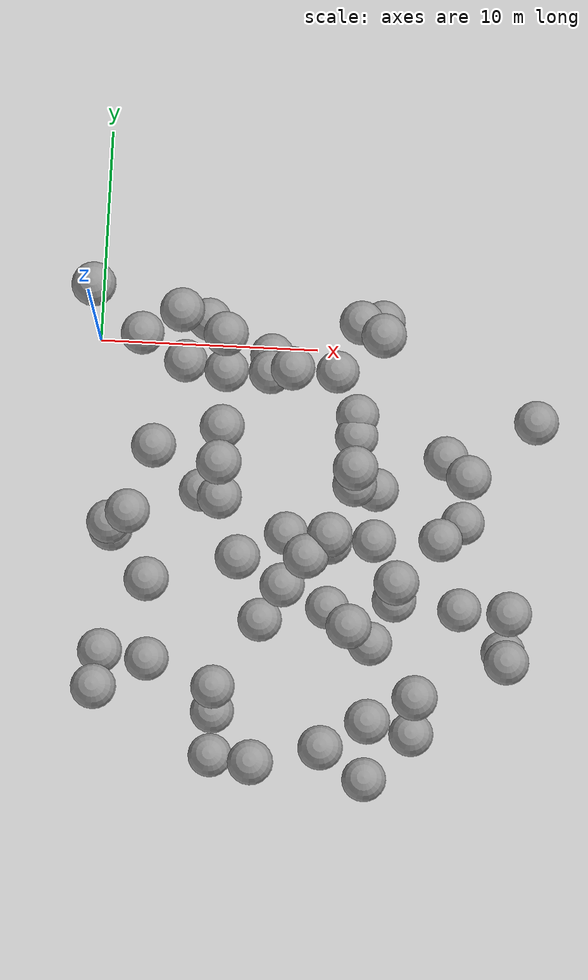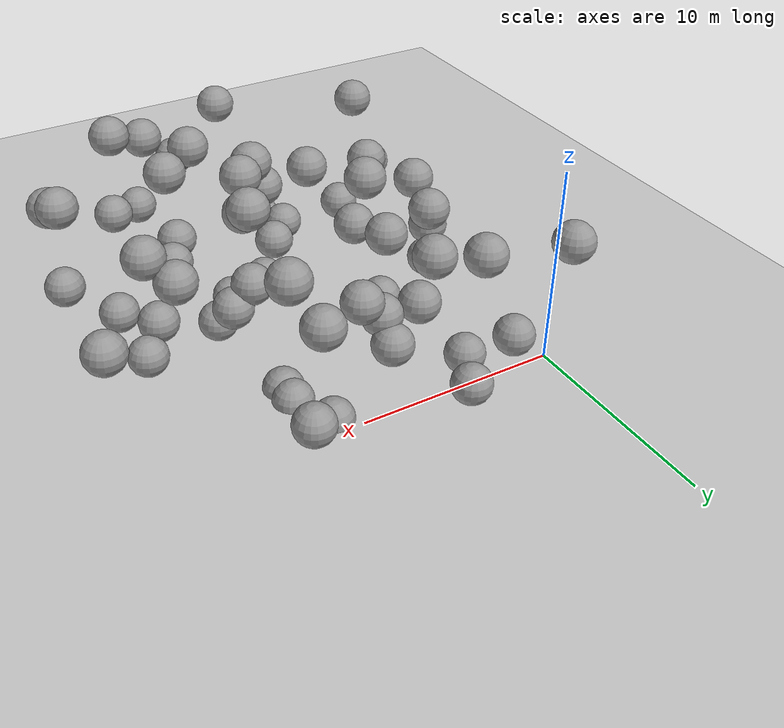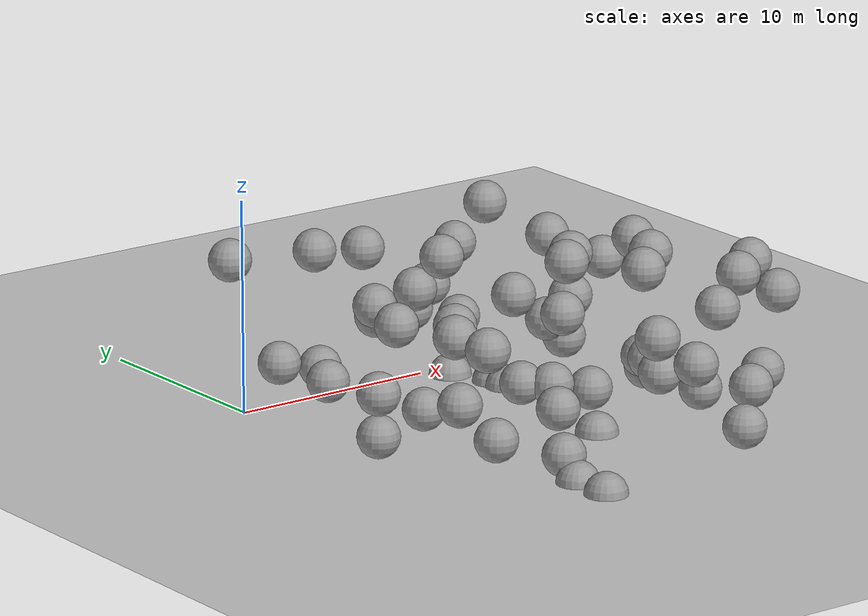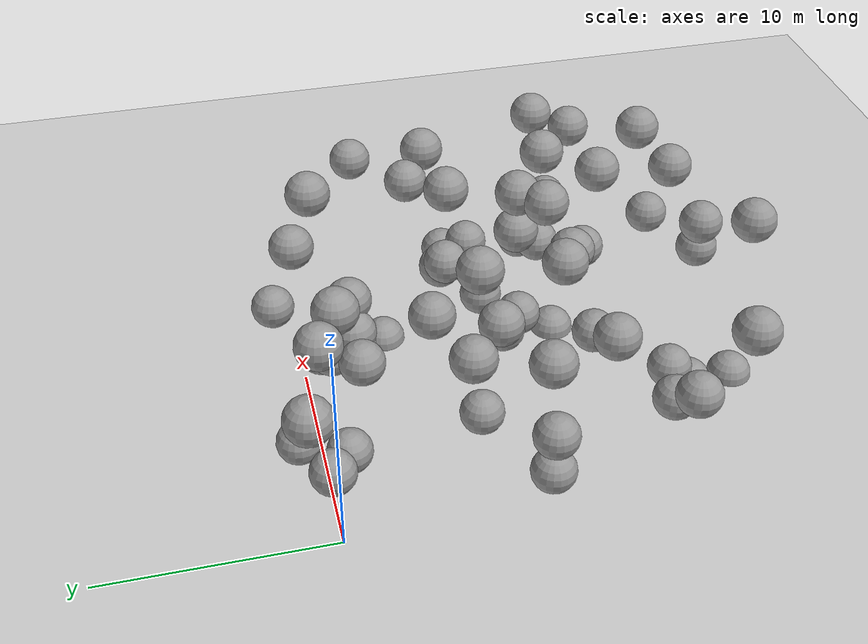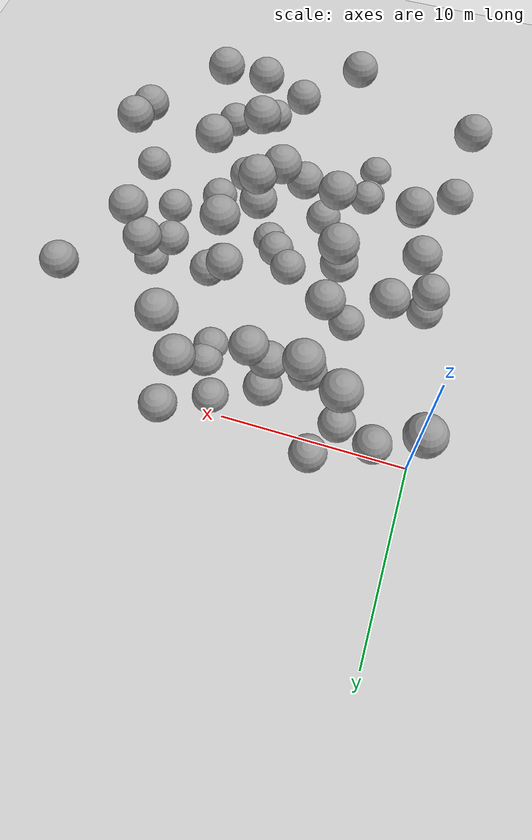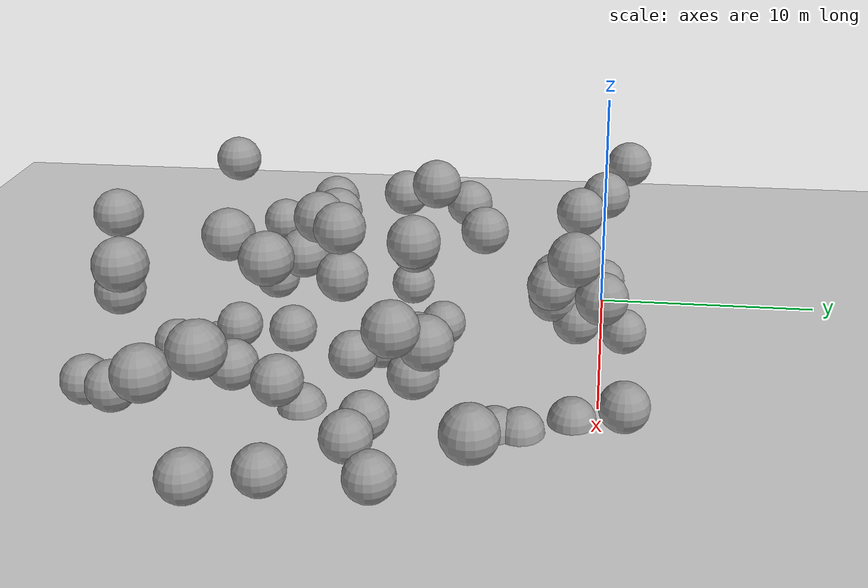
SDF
<sdf version="1.7">
 <world name="default">
  <model name="ground_plane">
   <static>1</static>
   <link name="link">
    <collision name="collision">
     <geometry><plane><normal>0 0 1</normal><size>100 100</size></plane></geometry>
     <surface>
      <contact><collide_bitmask>65535</collide_bitmask></contact>
      <friction><ode><mu>100</mu><mu2>50</mu2></ode></friction>
     </surface>
    </collision>
    <visual name="visual">
     <cast_shadows>0</cast_shadows>
     <geometry><plane><normal>0 0 1</normal><size>100 100</size></plane></geometry>
     <material>
      <script><uri>file://media/materials/scripts/gazebo.material</uri><name>Gazebo/Grey</name></script>
     </material>
    </visual>
   </link>
  </model>
  <model name="sphere_2">
   <static>1</static>
   <pose>16 -6 6 0 0 0</pose>
   <link name="link">
    <inertial>
     <mass>418.87902047863906</mass>
     <inertia>
      <ixx>167.55160819145564</ixx>
      <iyy>167.55160819145564</iyy>
      <izz>167.55160819145564</izz>
      <ixy>0</ixy>
      <ixz>0</ixz>
      <iyz>0</iyz>
     </inertia>
    </inertial>
    <collision name="collision"><geometry><sphere><radius>1.0</radius></sphere></geometry></collision>
    <visual name="visual">
     <geometry><sphere><radius>1.0</radius></sphere></geometry>
     <material>
      <script><uri>file://media/materials/scripts/gazebo.material</uri><name>Gazebo/Grey</name></script>
     </material>
    </visual>
   </link>
  </model>
  <model name="sphere_11">
   <static>1</static>
   <pose>13 -7 3 0 0 0</pose>
   <link name="link">
    <inertial>
     <mass>418.87902047863906</mass>
     <inertia>
      <ixx>167.55160819145564</ixx>
      <iyy>167.55160819145564</iyy>
      <izz>167.55160819145564</izz>
      <ixy>0</ixy>
      <ixz>0</ixz>
      <iyz>0</iyz>
     </inertia>
    </inertial>
    <collision name="collision"><geometry><sphere><radius>1.0</radius></sphere></geometry></collision>
    <visual name="visual">
     <geometry><sphere><radius>1.0</radius></sphere></geometry>
     <material>
      <script><uri>file://media/materials/scripts/gazebo.material</uri><name>Gazebo/Grey</name></script>
     </material>
    </visual>
   </link>
  </model>
  <model name="sphere_12">
   <static>1</static>
   <pose>13 -18 7 0 0 0</pose>
   <link name="link">
    <inertial>
     <mass>418.87902047863906</mass>
     <inertia>
      <ixx>167.55160819145564</ixx>
      <iyy>167.55160819145564</iyy>
      <izz>167.55160819145564</izz>
      <ixy>0</ixy>
      <ixz>0</ixz>
      <iyz>0</iyz>
     </inertia>
    </inertial>
    <collision name="collision"><geometry><sphere><radius>1.0</radius></sphere></geometry></collision>
    <visual name="visual">
     <geometry><sphere><radius>1.0</radius></sphere></geometry>
     <material>
      <script><uri>file://media/materials/scripts/gazebo.material</uri><name>Gazebo/Grey</name></script>
     </material>
    </visual>
   </link>
  </model>
  <model name="sphere_13">
   <static>1</static>
   <pose>1 -9 1 0 0 0</pose>
   <link name="link">
    <inertial>
     <mass>418.87902047863906</mass>
     <inertia>
      <ixx>167.55160819145564</ixx>
      <iyy>167.55160819145564</iyy>
      <izz>167.55160819145564</izz>
      <ixy>0</ixy>
      <ixz>0</ixz>
      <iyz>0</iyz>
     </inertia>
    </inertial>
    <collision name="collision"><geometry><sphere><radius>1.0</radius></sphere></geometry></collision>
    <visual name="visual">
     <geometry><sphere><radius>1.0</radius></sphere></geometry>
     <material>
      <script><uri>file://media/materials/scripts/gazebo.material</uri><name>Gazebo/Grey</name></script>
     </material>
    </visual>
   </link>
  </model>
  <model name="sphere_18">
   <static>1</static>
   <pose>8 -13 2 0 0 0</pose>
   <link name="link">
    <inertial>
     <mass>418.87902047863906</mass>
     <inertia>
      <ixx>167.55160819145564</ixx>
      <iyy>167.55160819145564</iyy>
      <izz>167.55160819145564</izz>
      <ixy>0</ixy>
      <ixz>0</ixz>
      <iyz>0</iyz>
     </inertia>
    </inertial>
    <collision name="collision"><geometry><sphere><radius>1.0</radius></sphere></geometry></collision>
    <visual name="visual">
     <geometry><sphere><radius>1.0</radius></sphere></geometry>
     <material>
      <script><uri>file://media/materials/scripts/gazebo.material</uri><name>Gazebo/Grey</name></script>
     </material>
    </visual>
   </link>
  </model>
  <model name="sphere_22">
   <static>1</static>
   <pose>5 1 1 0 0 0</pose>
   <link name="link">
    <inertial>
     <mass>418.87902047863906</mass>
     <inertia>
      <ixx>167.55160819145564</ixx>
      <iyy>167.55160819145564</iyy>
      <izz>167.55160819145564</izz>
      <ixy>0</ixy>
      <ixz>0</ixz>
      <iyz>0</iyz>
     </inertia>
    </inertial>
    <collision name="collision"><geometry><sphere><radius>1.0</radius></sphere></geometry></collision>
    <visual name="visual">
     <geometry><sphere><radius>1.0</radius></sphere></geometry>
     <material>
      <script><uri>file://media/materials/scripts/gazebo.material</uri><name>Gazebo/Grey</name></script>
     </material>
    </visual>
   </link>
  </model>
  <model name="sphere_25">
   <static>1</static>
   <pose>1 -9 3 0 0 0</pose>
   <link name="link">
    <inertial>
     <mass>418.87902047863906</mass>
     <inertia>
      <ixx>167.55160819145564</ixx>
      <iyy>167.55160819145564</iyy>
      <izz>167.55160819145564</izz>
      <ixy>0</ixy>
      <ixz>0</ixz>
      <iyz>0</iyz>
     </inertia>
    </inertial>
    <collision name="collision"><geometry><sphere><radius>1.0</radius></sphere></geometry></collision>
    <visual name="visual">
     <geometry><sphere><radius>1.0</radius></sphere></geometry>
     <material>
      <script><uri>file://media/materials/scripts/gazebo.material</uri><name>Gazebo/Grey</name></script>
     </material>
    </visual>
   </link>
  </model>
  <model name="sphere_31">
   <static>1</static>
   <pose>14 -12 3 0 0 0</pose>
   <link name="link">
    <inertial>
     <mass>418.87902047863906</mass>
     <inertia>
      <ixx>167.55160819145564</ixx>
      <iyy>167.55160819145564</iyy>
      <izz>167.55160819145564</izz>
      <ixy>0</ixy>
      <ixz>0</ixz>
      <iyz>0</iyz>
     </inertia>
    </inertial>
    <collision name="collision"><geometry><sphere><radius>1.0</radius></sphere></geometry></collision>
    <visual name="visual">
     <geometry><sphere><radius>1.0</radius></sphere></geometry>
     <material>
      <script><uri>file://media/materials/scripts/gazebo.material</uri><name>Gazebo/Grey</name></script>
     </material>
    </visual>
   </link>
  </model>
  <model name="sphere_34">
   <static>1</static>
   <pose>1 -17 7 0 0 0</pose>
   <link name="link">
    <inertial>
     <mass>418.87902047863906</mass>
     <inertia>
      <ixx>167.55160819145564</ixx>
      <iyy>167.55160819145564</iyy>
      <izz>167.55160819145564</izz>
      <ixy>0</ixy>
      <ixz>0</ixz>
      <iyz>0</iyz>
     </inertia>
    </inertial>
    <collision name="collision"><geometry><sphere><radius>1.0</radius></sphere></geometry></collision>
    <visual name="visual">
     <geometry><sphere><radius>1.0</radius></sphere></geometry>
     <material>
      <script><uri>file://media/materials/scripts/gazebo.material</uri><name>Gazebo/Grey</name></script>
     </material>
    </visual>
   </link>
  </model>
  <model name="sphere_39">
   <static>1</static>
   <pose>3 -15 2 0 0 0</pose>
   <link name="link">
    <inertial>
     <mass>418.87902047863906</mass>
     <inertia>
      <ixx>167.55160819145564</ixx>
      <iyy>167.55160819145564</iyy>
      <izz>167.55160819145564</izz>
      <ixy>0</ixy>
      <ixz>0</ixz>
      <iyz>0</iyz>
     </inertia>
    </inertial>
    <collision name="collision"><geometry><sphere><radius>1.0</radius></sphere></geometry></collision>
    <visual name="visual">
     <geometry><sphere><radius>1.0</radius></sphere></geometry>
     <material>
      <script><uri>file://media/materials/scripts/gazebo.material</uri><name>Gazebo/Grey</name></script>
     </material>
    </visual>
   </link>
  </model>
  <model name="sphere_42">
   <static>1</static>
   <pose>13 -1 8 0 0 0</pose>
   <link name="link">
    <inertial>
     <mass>418.87902047863906</mass>
     <inertia>
      <ixx>167.55160819145564</ixx>
      <iyy>167.55160819145564</iyy>
      <izz>167.55160819145564</izz>
      <ixy>0</ixy>
      <ixz>0</ixz>
      <iyz>0</iyz>
     </inertia>
    </inertial>
    <collision name="collision"><geometry><sphere><radius>1.0</radius></sphere></geometry></collision>
    <visual name="visual">
     <geometry><sphere><radius>1.0</radius></sphere></geometry>
     <material>
      <script><uri>file://media/materials/scripts/gazebo.material</uri><name>Gazebo/Grey</name></script>
     </material>
    </visual>
   </link>
  </model>
  <model name="sphere_43">
   <static>1</static>
   <pose>9 -2 5 0 0 0</pose>
   <link name="link">
    <inertial>
     <mass>418.87902047863906</mass>
     <inertia>
      <ixx>167.55160819145564</ixx>
      <iyy>167.55160819145564</iyy>
      <izz>167.55160819145564</izz>
      <ixy>0</ixy>
      <ixz>0</ixz>
      <iyz>0</iyz>
     </inertia>
    </inertial>
    <collision name="collision"><geometry><sphere><radius>1.0</radius></sphere></geometry></collision>
    <visual name="visual">
     <geometry><sphere><radius>1.0</radius></sphere></geometry>
     <material>
      <script><uri>file://media/materials/scripts/gazebo.material</uri><name>Gazebo/Grey</name></script>
     </material>
    </visual>
   </link>
  </model>
  <model name="sphere_45">
   <static>1</static>
   <pose>8 -2 4 0 0 0</pose>
   <link name="link">
    <inertial>
     <mass>418.87902047863906</mass>
     <inertia>
      <ixx>167.55160819145564</ixx>
      <iyy>167.55160819145564</iyy>
      <izz>167.55160819145564</izz>
      <ixy>0</ixy>
      <ixz>0</ixz>
      <iyz>0</iyz>
     </inertia>
    </inertial>
    <collision name="collision"><geometry><sphere><radius>1.0</radius></sphere></geometry></collision>
    <visual name="visual">
     <geometry><sphere><radius>1.0</radius></sphere></geometry>
     <material>
      <script><uri>file://media/materials/scripts/gazebo.material</uri><name>Gazebo/Grey</name></script>
     </material>
    </visual>
   </link>
  </model>
  <model name="sphere_47">
   <static>1</static>
   <pose>12 -4 0 0 0 0</pose>
   <link name="link">
    <inertial>
     <mass>418.87902047863906</mass>
     <inertia>
      <ixx>167.55160819145564</ixx>
      <iyy>167.55160819145564</iyy>
      <izz>167.55160819145564</izz>
      <ixy>0</ixy>
      <ixz>0</ixz>
      <iyz>0</iyz>
     </inertia>
    </inertial>
    <collision name="collision"><geometry><sphere><radius>1.0</radius></sphere></geometry></collision>
    <visual name="visual">
     <geometry><sphere><radius>1.0</radius></sphere></geometry>
     <material>
      <script><uri>file://media/materials/scripts/gazebo.material</uri><name>Gazebo/Grey</name></script>
     </material>
    </visual>
   </link>
  </model>
  <model name="sphere_48">
   <static>1</static>
   <pose>11 -12 0 0 0 0</pose>
   <link name="link">
    <inertial>
     <mass>418.87902047863906</mass>
     <inertia>
      <ixx>167.55160819145564</ixx>
      <iyy>167.55160819145564</iyy>
      <izz>167.55160819145564</izz>
      <ixy>0</ixy>
      <ixz>0</ixz>
      <iyz>0</iyz>
     </inertia>
    </inertial>
    <collision name="collision"><geometry><sphere><radius>1.0</radius></sphere></geometry></collision>
    <visual name="visual">
     <geometry><sphere><radius>1.0</radius></sphere></geometry>
     <material>
      <script><uri>file://media/materials/scripts/gazebo.material</uri><name>Gazebo/Grey</name></script>
     </material>
    </visual>
   </link>
  </model>
  <model name="sphere_49">
   <static>1</static>
   <pose>16 -9 2 0 0 0</pose>
   <link name="link">
    <inertial>
     <mass>418.87902047863906</mass>
     <inertia>
      <ixx>167.55160819145564</ixx>
      <iyy>167.55160819145564</iyy>
      <izz>167.55160819145564</izz>
      <ixy>0</ixy>
      <ixz>0</ixz>
      <iyz>0</iyz>
     </inertia>
    </inertial>
    <collision name="collision"><geometry><sphere><radius>1.0</radius></sphere></geometry></collision>
    <visual name="visual">
     <geometry><sphere><radius>1.0</radius></sphere></geometry>
     <material>
      <script><uri>file://media/materials/scripts/gazebo.material</uri><name>Gazebo/Grey</name></script>
     </material>
    </visual>
   </link>
  </model>
  <model name="sphere_50">
   <static>1</static>
   <pose>9 -12 6 0 0 0</pose>
   <link name="link">
    <inertial>
     <mass>418.87902047863906</mass>
     <inertia>
      <ixx>167.55160819145564</ixx>
      <iyy>167.55160819145564</iyy>
      <izz>167.55160819145564</izz>
      <ixy>0</ixy>
      <ixz>0</ixz>
      <iyz>0</iyz>
     </inertia>
    </inertial>
    <collision name="collision"><geometry><sphere><radius>1.0</radius></sphere></geometry></collision>
    <visual name="visual">
     <geometry><sphere><radius>1.0</radius></sphere></geometry>
     <material>
      <script><uri>file://media/materials/scripts/gazebo.material</uri><name>Gazebo/Grey</name></script>
     </material>
    </visual>
   </link>
  </model>
  <model name="sphere_53">
   <static>1</static>
   <pose>19 -14 2 0 0 0</pose>
   <link name="link">
    <inertial>
     <mass>418.87902047863906</mass>
     <inertia>
      <ixx>167.55160819145564</ixx>
      <iyy>167.55160819145564</iyy>
      <izz>167.55160819145564</izz>
      <ixy>0</ixy>
      <ixz>0</ixz>
      <iyz>0</iyz>
     </inertia>
    </inertial>
    <collision name="collision"><geometry><sphere><radius>1.0</radius></sphere></geometry></collision>
    <visual name="visual">
     <geometry><sphere><radius>1.0</radius></sphere></geometry>
     <material>
      <script><uri>file://media/materials/scripts/gazebo.material</uri><name>Gazebo/Grey</name></script>
     </material>
    </visual>
   </link>
  </model>
  <model name="sphere_55">
   <static>1</static>
   <pose>10 -11 8 0 0 0</pose>
   <link name="link">
    <inertial>
     <mass>418.87902047863906</mass>
     <inertia>
      <ixx>167.55160819145564</ixx>
      <iyy>167.55160819145564</iyy>
      <izz>167.55160819145564</izz>
      <ixy>0</ixy>
      <ixz>0</ixz>
      <iyz>0</iyz>
     </inertia>
    </inertial>
    <collision name="collision"><geometry><sphere><radius>1.0</radius></sphere></geometry></collision>
    <visual name="visual">
     <geometry><sphere><radius>1.0</radius></sphere></geometry>
     <material>
      <script><uri>file://media/materials/scripts/gazebo.material</uri><name>Gazebo/Grey</name></script>
     </material>
    </visual>
   </link>
  </model>
  <model name="sphere_65">
   <static>1</static>
   <pose>6 -8 5 0 0 0</pose>
   <link name="link">
    <inertial>
     <mass>418.87902047863906</mass>
     <inertia>
      <ixx>167.55160819145564</ixx>
      <iyy>167.55160819145564</iyy>
      <izz>167.55160819145564</izz>
      <ixy>0</ixy>
      <ixz>0</ixz>
      <iyz>0</iyz>
     </inertia>
    </inertial>
    <collision name="collision"><geometry><sphere><radius>1.0</radius></sphere></geometry></collision>
    <visual name="visual">
     <geometry><sphere><radius>1.0</radius></sphere></geometry>
     <material>
      <script><uri>file://media/materials/scripts/gazebo.material</uri><name>Gazebo/Grey</name></script>
     </material>
    </visual>
   </link>
  </model>
  <model name="sphere_70">
   <static>1</static>
   <pose>8 -20 7 0 0 0</pose>
   <link name="link">
    <inertial>
     <mass>418.87902047863906</mass>
     <inertia>
      <ixx>167.55160819145564</ixx>
      <iyy>167.55160819145564</iyy>
      <izz>167.55160819145564</izz>
      <ixy>0</ixy>
      <ixz>0</ixz>
      <iyz>0</iyz>
     </inertia>
    </inertial>
    <collision name="collision"><geometry><sphere><radius>1.0</radius></sphere></geometry></collision>
    <visual name="visual">
     <geometry><sphere><radius>1.0</radius></sphere></geometry>
     <material>
      <script><uri>file://media/materials/scripts/gazebo.material</uri><name>Gazebo/Grey</name></script>
     </material>
    </visual>
   </link>
  </model>
  <model name="sphere_73">
   <static>1</static>
   <pose>17 -8 1 0 0 0</pose>
   <link name="link">
    <inertial>
     <mass>418.87902047863906</mass>
     <inertia>
      <ixx>167.55160819145564</ixx>
      <iyy>167.55160819145564</iyy>
      <izz>167.55160819145564</izz>
      <ixy>0</ixy>
      <ixz>0</ixz>
      <iyz>0</iyz>
     </inertia>
    </inertial>
    <collision name="collision"><geometry><sphere><radius>1.0</radius></sphere></geometry></collision>
    <visual name="visual">
     <geometry><sphere><radius>1.0</radius></sphere></geometry>
     <material>
      <script><uri>file://media/materials/scripts/gazebo.material</uri><name>Gazebo/Grey</name></script>
     </material>
    </visual>
   </link>
  </model>
  <model name="sphere_81">
   <static>1</static>
   <pose>3 -6 6 0 0 0</pose>
   <link name="link">
    <inertial>
     <mass>418.87902047863906</mass>
     <inertia>
      <ixx>167.55160819145564</ixx>
      <iyy>167.55160819145564</iyy>
      <izz>167.55160819145564</izz>
      <ixy>0</ixy>
      <ixz>0</ixz>
      <iyz>0</iyz>
     </inertia>
    </inertial>
    <collision name="collision"><geometry><sphere><radius>1.0</radius></sphere></geometry></collision>
    <visual name="visual">
     <geometry><sphere><radius>1.0</radius></sphere></geometry>
     <material>
      <script><uri>file://media/materials/scripts/gazebo.material</uri><name>Gazebo/Grey</name></script>
     </material>
    </visual>
   </link>
  </model>
  <model name="sphere_84">
   <static>1</static>
   <pose>12 0 6 0 0 0</pose>
   <link name="link">
    <inertial>
     <mass>418.87902047863906</mass>
     <inertia>
      <ixx>167.55160819145564</ixx>
      <iyy>167.55160819145564</iyy>
      <izz>167.55160819145564</izz>
      <ixy>0</ixy>
      <ixz>0</ixz>
      <iyz>0</iyz>
     </inertia>
    </inertial>
    <collision name="collision"><geometry><sphere><radius>1.0</radius></sphere></geometry></collision>
    <visual name="visual">
     <geometry><sphere><radius>1.0</radius></sphere></geometry>
     <material>
      <script><uri>file://media/materials/scripts/gazebo.material</uri><name>Gazebo/Grey</name></script>
     </material>
    </visual>
   </link>
  </model>
  <model name="sphere_85">
   <static>1</static>
   <pose>3 -12 6 0 0 0</pose>
   <link name="link">
    <inertial>
     <mass>418.87902047863906</mass>
     <inertia>
      <ixx>167.55160819145564</ixx>
      <iyy>167.55160819145564</iyy>
      <izz>167.55160819145564</izz>
      <ixy>0</ixy>
      <ixz>0</ixz>
      <iyz>0</iyz>
     </inertia>
    </inertial>
    <collision name="collision"><geometry><sphere><radius>1.0</radius></sphere></geometry></collision>
    <visual name="visual">
     <geometry><sphere><radius>1.0</radius></sphere></geometry>
     <material>
      <script><uri>file://media/materials/scripts/gazebo.material</uri><name>Gazebo/Grey</name></script>
     </material>
    </visual>
   </link>
  </model>
  <model name="sphere_87">
   <static>1</static>
   <pose>9 -9 2 0 0 0</pose>
   <link name="link">
    <inertial>
     <mass>418.87902047863906</mass>
     <inertia>
      <ixx>167.55160819145564</ixx>
      <iyy>167.55160819145564</iyy>
      <izz>167.55160819145564</izz>
      <ixy>0</ixy>
      <ixz>0</ixz>
      <iyz>0</iyz>
     </inertia>
    </inertial>
    <collision name="collision"><geometry><sphere><radius>1.0</radius></sphere></geometry></collision>
    <visual name="visual">
     <geometry><sphere><radius>1.0</radius></sphere></geometry>
     <material>
      <script><uri>file://media/materials/scripts/gazebo.material</uri><name>Gazebo/Grey</name></script>
     </material>
    </visual>
   </link>
  </model>
  <model name="sphere_89">
   <static>1</static>
   <pose>2 0 2 0 0 0</pose>
   <link name="link">
    <inertial>
     <mass>418.87902047863906</mass>
     <inertia>
      <ixx>167.55160819145564</ixx>
      <iyy>167.55160819145564</iyy>
      <izz>167.55160819145564</izz>
      <ixy>0</ixy>
      <ixz>0</ixz>
      <iyz>0</iyz>
     </inertia>
    </inertial>
    <collision name="collision"><geometry><sphere><radius>1.0</radius></sphere></geometry></collision>
    <visual name="visual">
     <geometry><sphere><radius>1.0</radius></sphere></geometry>
     <material>
      <script><uri>file://media/materials/scripts/gazebo.material</uri><name>Gazebo/Grey</name></script>
     </material>
    </visual>
   </link>
  </model>
  <model name="sphere_94">
   <static>1</static>
   <pose>10 -10 2 0 0 0</pose>
   <link name="link">
    <inertial>
     <mass>418.87902047863906</mass>
     <inertia>
      <ixx>167.55160819145564</ixx>
      <iyy>167.55160819145564</iyy>
      <izz>167.55160819145564</izz>
      <ixy>0</ixy>
      <ixz>0</ixz>
      <iyz>0</iyz>
     </inertia>
    </inertial>
    <collision name="collision"><geometry><sphere><radius>1.0</radius></sphere></geometry></collision>
    <visual name="visual">
     <geometry><sphere><radius>1.0</radius></sphere></geometry>
     <material>
      <script><uri>file://media/materials/scripts/gazebo.material</uri><name>Gazebo/Grey</name></script>
     </material>
    </visual>
   </link>
  </model>
  <model name="sphere_99">
   <static>1</static>
   <pose>13 -9 1 0 0 0</pose>
   <link name="link">
    <inertial>
     <mass>418.87902047863906</mass>
     <inertia>
      <ixx>167.55160819145564</ixx>
      <iyy>167.55160819145564</iyy>
      <izz>167.55160819145564</izz>
      <ixy>0</ixy>
      <ixz>0</ixz>
      <iyz>0</iyz>
     </inertia>
    </inertial>
    <collision name="collision"><geometry><sphere><radius>1.0</radius></sphere></geometry></collision>
    <visual name="visual">
     <geometry><sphere><radius>1.0</radius></sphere></geometry>
     <material>
      <script><uri>file://media/materials/scripts/gazebo.material</uri><name>Gazebo/Grey</name></script>
     </material>
    </visual>
   </link>
  </model>
  <model name="sphere_104">
   <static>1</static>
   <pose>2 -9 6 0 0 0</pose>
   <link name="link">
    <inertial>
     <mass>418.87902047863906</mass>
     <inertia>
      <ixx>167.55160819145564</ixx>
      <iyy>167.55160819145564</iyy>
      <izz>167.55160819145564</izz>
      <ixy>0</ixy>
      <ixz>0</ixz>
      <iyz>0</iyz>
     </inertia>
    </inertial>
    <collision name="collision"><geometry><sphere><radius>1.0</radius></sphere></geometry></collision>
    <visual name="visual">
     <geometry><sphere><radius>1.0</radius></sphere></geometry>
     <material>
      <script><uri>file://media/materials/scripts/gazebo.material</uri><name>Gazebo/Grey</name></script>
     </material>
    </visual>
   </link>
  </model>
  <model name="sphere_106">
   <static>1</static>
   <pose>12 -14 8 0 0 0</pose>
   <link name="link">
    <inertial>
     <mass>418.87902047863906</mass>
     <inertia>
      <ixx>167.55160819145564</ixx>
      <iyy>167.55160819145564</iyy>
      <izz>167.55160819145564</izz>
      <ixy>0</ixy>
      <ixz>0</ixz>
      <iyz>0</iyz>
     </inertia>
    </inertial>
    <collision name="collision"><geometry><sphere><radius>1.0</radius></sphere></geometry></collision>
    <visual name="visual">
     <geometry><sphere><radius>1.0</radius></sphere></geometry>
     <material>
      <script><uri>file://media/materials/scripts/gazebo.material</uri><name>Gazebo/Grey</name></script>
     </material>
    </visual>
   </link>
  </model>
  <model name="sphere_107">
   <static>1</static>
   <pose>13 -14 3 0 0 0</pose>
   <link name="link">
    <inertial>
     <mass>418.87902047863906</mass>
     <inertia>
      <ixx>167.55160819145564</ixx>
      <iyy>167.55160819145564</iyy>
      <izz>167.55160819145564</izz>
      <ixy>0</ixy>
      <ixz>0</ixz>
      <iyz>0</iyz>
     </inertia>
    </inertial>
    <collision name="collision"><geometry><sphere><radius>1.0</radius></sphere></geometry></collision>
    <visual name="visual">
     <geometry><sphere><radius>1.0</radius></sphere></geometry>
     <material>
      <script><uri>file://media/materials/scripts/gazebo.material</uri><name>Gazebo/Grey</name></script>
     </material>
    </visual>
   </link>
  </model>
  <model name="sphere_114">
   <static>1</static>
   <pose>6 -7 8 0 0 0</pose>
   <link name="link">
    <inertial>
     <mass>418.87902047863906</mass>
     <inertia>
      <ixx>167.55160819145564</ixx>
      <iyy>167.55160819145564</iyy>
      <izz>167.55160819145564</izz>
      <ixy>0</ixy>
      <ixz>0</ixz>
      <iyz>0</iyz>
     </inertia>
    </inertial>
    <collision name="collision"><geometry><sphere><radius>1.0</radius></sphere></geometry></collision>
    <visual name="visual">
     <geometry><sphere><radius>1.0</radius></sphere></geometry>
     <material>
      <script><uri>file://media/materials/scripts/gazebo.material</uri><name>Gazebo/Grey</name></script>
     </material>
    </visual>
   </link>
  </model>
  <model name="sphere_115">
   <static>1</static>
   <pose>11 -10 6 0 0 0</pose>
   <link name="link">
    <inertial>
     <mass>418.87902047863906</mass>
     <inertia>
      <ixx>167.55160819145564</ixx>
      <iyy>167.55160819145564</iyy>
      <izz>167.55160819145564</izz>
      <ixy>0</ixy>
      <ixz>0</ixz>
      <iyz>0</iyz>
     </inertia>
    </inertial>
    <collision name="collision"><geometry><sphere><radius>1.0</radius></sphere></geometry></collision>
    <visual name="visual">
     <geometry><sphere><radius>1.0</radius></sphere></geometry>
     <material>
      <script><uri>file://media/materials/scripts/gazebo.material</uri><name>Gazebo/Grey</name></script>
     </material>
    </visual>
   </link>
  </model>
  <model name="sphere_117">
   <static>1</static>
   <pose>11 -19 5 0 0 0</pose>
   <link name="link">
    <inertial>
     <mass>418.87902047863906</mass>
     <inertia>
      <ixx>167.55160819145564</ixx>
      <iyy>167.55160819145564</iyy>
      <izz>167.55160819145564</izz>
      <ixy>0</ixy>
      <ixz>0</ixz>
      <iyz>0</iyz>
     </inertia>
    </inertial>
    <collision name="collision"><geometry><sphere><radius>1.0</radius></sphere></geometry></collision>
    <visual name="visual">
     <geometry><sphere><radius>1.0</radius></sphere></geometry>
     <material>
      <script><uri>file://media/materials/scripts/gazebo.material</uri><name>Gazebo/Grey</name></script>
     </material>
    </visual>
   </link>
  </model>
  <model name="sphere_130">
   <static>1</static>
   <pose>12 -7 8 0 0 0</pose>
   <link name="link">
    <inertial>
     <mass>418.87902047863906</mass>
     <inertia>
      <ixx>167.55160819145564</ixx>
      <iyy>167.55160819145564</iyy>
      <izz>167.55160819145564</izz>
      <ixy>0</ixy>
      <ixz>0</ixz>
      <iyz>0</iyz>
     </inertia>
    </inertial>
    <collision name="collision"><geometry><sphere><radius>1.0</radius></sphere></geometry></collision>
    <visual name="visual">
     <geometry><sphere><radius>1.0</radius></sphere></geometry>
     <material>
      <script><uri>file://media/materials/scripts/gazebo.material</uri><name>Gazebo/Grey</name></script>
     </material>
    </visual>
   </link>
  </model>
  <model name="sphere_133">
   <static>1</static>
   <pose>7 -11 7 0 0 0</pose>
   <link name="link">
    <inertial>
     <mass>418.87902047863906</mass>
     <inertia>
      <ixx>167.55160819145564</ixx>
      <iyy>167.55160819145564</iyy>
      <izz>167.55160819145564</izz>
      <ixy>0</ixy>
      <ixz>0</ixz>
      <iyz>0</iyz>
     </inertia>
    </inertial>
    <collision name="collision"><geometry><sphere><radius>1.0</radius></sphere></geometry></collision>
    <visual name="visual">
     <geometry><sphere><radius>1.0</radius></sphere></geometry>
     <material>
      <script><uri>file://media/materials/scripts/gazebo.material</uri><name>Gazebo/Grey</name></script>
     </material>
    </visual>
   </link>
  </model>
  <model name="sphere_137">
   <static>1</static>
   <pose>4 -1 1 0 0 0</pose>
   <link name="link">
    <inertial>
     <mass>418.87902047863906</mass>
     <inertia>
      <ixx>167.55160819145564</ixx>
      <iyy>167.55160819145564</iyy>
      <izz>167.55160819145564</izz>
      <ixy>0</ixy>
      <ixz>0</ixz>
      <iyz>0</iyz>
     </inertia>
    </inertial>
    <collision name="collision"><geometry><sphere><radius>1.0</radius></sphere></geometry></collision>
    <visual name="visual">
     <geometry><sphere><radius>1.0</radius></sphere></geometry>
     <material>
      <script><uri>file://media/materials/scripts/gazebo.material</uri><name>Gazebo/Grey</name></script>
     </material>
    </visual>
   </link>
  </model>
  <model name="sphere_141">
   <static>1</static>
   <pose>6 -17 0 0 0 0</pose>
   <link name="link">
    <inertial>
     <mass>418.87902047863906</mass>
     <inertia>
      <ixx>167.55160819145564</ixx>
      <iyy>167.55160819145564</iyy>
      <izz>167.55160819145564</izz>
      <ixy>0</ixy>
      <ixz>0</ixz>
      <iyz>0</iyz>
     </inertia>
    </inertial>
    <collision name="collision"><geometry><sphere><radius>1.0</radius></sphere></geometry></collision>
    <visual name="visual">
     <geometry><sphere><radius>1.0</radius></sphere></geometry>
     <material>
      <script><uri>file://media/materials/scripts/gazebo.material</uri><name>Gazebo/Grey</name></script>
     </material>
    </visual>
   </link>
  </model>
  <model name="sphere_151">
   <static>1</static>
   <pose>14 -12 8 0 0 0</pose>
   <link name="link">
    <inertial>
     <mass>418.87902047863906</mass>
     <inertia>
      <ixx>167.55160819145564</ixx>
      <iyy>167.55160819145564</iyy>
      <izz>167.55160819145564</izz>
      <ixy>0</ixy>
      <ixz>0</ixz>
      <iyz>0</iyz>
     </inertia>
    </inertial>
    <collision name="collision"><geometry><sphere><radius>1.0</radius></sphere></geometry></collision>
    <visual name="visual">
     <geometry><sphere><radius>1.0</radius></sphere></geometry>
     <material>
      <script><uri>file://media/materials/scripts/gazebo.material</uri><name>Gazebo/Grey</name></script>
     </material>
    </visual>
   </link>
  </model>
  <model name="sphere_153">
   <static>1</static>
   <pose>6 -16 1 0 0 0</pose>
   <link name="link">
    <inertial>
     <mass>418.87902047863906</mass>
     <inertia>
      <ixx>167.55160819145564</ixx>
      <iyy>167.55160819145564</iyy>
      <izz>167.55160819145564</izz>
      <ixy>0</ixy>
      <ixz>0</ixz>
      <iyz>0</iyz>
     </inertia>
    </inertial>
    <collision name="collision"><geometry><sphere><radius>1.0</radius></sphere></geometry></collision>
    <visual name="visual">
     <geometry><sphere><radius>1.0</radius></sphere></geometry>
     <material>
      <script><uri>file://media/materials/scripts/gazebo.material</uri><name>Gazebo/Grey</name></script>
     </material>
    </visual>
   </link>
  </model>
  <model name="sphere_158">
   <static>1</static>
   <pose>11 -1 0 0 0 0</pose>
   <link name="link">
    <inertial>
     <mass>418.87902047863906</mass>
     <inertia>
      <ixx>167.55160819145564</ixx>
      <iyy>167.55160819145564</iyy>
      <izz>167.55160819145564</izz>
      <ixy>0</ixy>
      <ixz>0</ixz>
      <iyz>0</iyz>
     </inertia>
    </inertial>
    <collision name="collision"><geometry><sphere><radius>1.0</radius></sphere></geometry></collision>
    <visual name="visual">
     <geometry><sphere><radius>1.0</radius></sphere></geometry>
     <material>
      <script><uri>file://media/materials/scripts/gazebo.material</uri><name>Gazebo/Grey</name></script>
     </material>
    </visual>
   </link>
  </model>
  <model name="sphere_166">
   <static>1</static>
   <pose>15 -17 8 0 0 0</pose>
   <link name="link">
    <inertial>
     <mass>418.87902047863906</mass>
     <inertia>
      <ixx>167.55160819145564</ixx>
      <iyy>167.55160819145564</iyy>
      <izz>167.55160819145564</izz>
      <ixy>0</ixy>
      <ixz>0</ixz>
      <iyz>0</iyz>
     </inertia>
    </inertial>
    <collision name="collision"><geometry><sphere><radius>1.0</radius></sphere></geometry></collision>
    <visual name="visual">
     <geometry><sphere><radius>1.0</radius></sphere></geometry>
     <material>
      <script><uri>file://media/materials/scripts/gazebo.material</uri><name>Gazebo/Grey</name></script>
     </material>
    </visual>
   </link>
  </model>
  <model name="sphere_171">
   <static>1</static>
   <pose>11 -10 8 0 0 0</pose>
   <link name="link">
    <inertial>
     <mass>418.87902047863906</mass>
     <inertia>
      <ixx>167.55160819145564</ixx>
      <iyy>167.55160819145564</iyy>
      <izz>167.55160819145564</izz>
      <ixy>0</ixy>
      <ixz>0</ixz>
      <iyz>0</iyz>
     </inertia>
    </inertial>
    <collision name="collision"><geometry><sphere><radius>1.0</radius></sphere></geometry></collision>
    <visual name="visual">
     <geometry><sphere><radius>1.0</radius></sphere></geometry>
     <material>
      <script><uri>file://media/materials/scripts/gazebo.material</uri><name>Gazebo/Grey</name></script>
     </material>
    </visual>
   </link>
  </model>
  <model name="sphere_174">
   <static>1</static>
   <pose>12 -7 4 0 0 0</pose>
   <link name="link">
    <inertial>
     <mass>418.87902047863906</mass>
     <inertia>
      <ixx>167.55160819145564</ixx>
      <iyy>167.55160819145564</iyy>
      <izz>167.55160819145564</izz>
      <ixy>0</ixy>
      <ixz>0</ixz>
      <iyz>0</iyz>
     </inertia>
    </inertial>
    <collision name="collision"><geometry><sphere><radius>1.0</radius></sphere></geometry></collision>
    <visual name="visual">
     <geometry><sphere><radius>1.0</radius></sphere></geometry>
     <material>
      <script><uri>file://media/materials/scripts/gazebo.material</uri><name>Gazebo/Grey</name></script>
     </material>
    </visual>
   </link>
  </model>
  <model name="sphere_179">
   <static>1</static>
   <pose>4 0 7 0 0 0</pose>
   <link name="link">
    <inertial>
     <mass>418.87902047863906</mass>
     <inertia>
      <ixx>167.55160819145564</ixx>
      <iyy>167.55160819145564</iyy>
      <izz>167.55160819145564</izz>
      <ixy>0</ixy>
      <ixz>0</ixz>
      <iyz>0</iyz>
     </inertia>
    </inertial>
    <collision name="collision"><geometry><sphere><radius>1.0</radius></sphere></geometry></collision>
    <visual name="visual">
     <geometry><sphere><radius>1.0</radius></sphere></geometry>
     <material>
      <script><uri>file://media/materials/scripts/gazebo.material</uri><name>Gazebo/Grey</name></script>
     </material>
    </visual>
   </link>
  </model>
  <model name="sphere_180">
   <static>1</static>
   <pose>20 -4 5 0 0 0</pose>
   <link name="link">
    <inertial>
     <mass>418.87902047863906</mass>
     <inertia>
      <ixx>167.55160819145564</ixx>
      <iyy>167.55160819145564</iyy>
      <izz>167.55160819145564</izz>
      <ixy>0</ixy>
      <ixz>0</ixz>
      <iyz>0</iyz>
     </inertia>
    </inertial>
    <collision name="collision"><geometry><sphere><radius>1.0</radius></sphere></geometry></collision>
    <visual name="visual">
     <geometry><sphere><radius>1.0</radius></sphere></geometry>
     <material>
      <script><uri>file://media/materials/scripts/gazebo.material</uri><name>Gazebo/Grey</name></script>
     </material>
    </visual>
   </link>
  </model>
  <model name="sphere_183">
   <static>1</static>
   <pose>13 1 2 0 0 0</pose>
   <link name="link">
    <inertial>
     <mass>418.87902047863906</mass>
     <inertia>
      <ixx>167.55160819145564</ixx>
      <iyy>167.55160819145564</iyy>
      <izz>167.55160819145564</izz>
      <ixy>0</ixy>
      <ixz>0</ixz>
      <iyz>0</iyz>
     </inertia>
    </inertial>
    <collision name="collision"><geometry><sphere><radius>1.0</radius></sphere></geometry></collision>
    <visual name="visual">
     <geometry><sphere><radius>1.0</radius></sphere></geometry>
     <material>
      <script><uri>file://media/materials/scripts/gazebo.material</uri><name>Gazebo/Grey</name></script>
     </material>
    </visual>
   </link>
  </model>
  <model name="sphere_185">
   <static>1</static>
   <pose>17 -7 7 0 0 0</pose>
   <link name="link">
    <inertial>
     <mass>418.87902047863906</mass>
     <inertia>
      <ixx>167.55160819145564</ixx>
      <iyy>167.55160819145564</iyy>
      <izz>167.55160819145564</izz>
      <ixy>0</ixy>
      <ixz>0</ixz>
      <iyz>0</iyz>
     </inertia>
    </inertial>
    <collision name="collision"><geometry><sphere><radius>1.0</radius></sphere></geometry></collision>
    <visual name="visual">
     <geometry><sphere><radius>1.0</radius></sphere></geometry>
     <material>
      <script><uri>file://media/materials/scripts/gazebo.material</uri><name>Gazebo/Grey</name></script>
     </material>
    </visual>
   </link>
  </model>
  <model name="sphere_187">
   <static>1</static>
   <pose>6 -2 4 0 0 0</pose>
   <link name="link">
    <inertial>
     <mass>418.87902047863906</mass>
     <inertia>
      <ixx>167.55160819145564</ixx>
      <iyy>167.55160819145564</iyy>
      <izz>167.55160819145564</izz>
      <ixy>0</ixy>
      <ixz>0</ixz>
      <iyz>0</iyz>
     </inertia>
    </inertial>
    <collision name="collision"><geometry><sphere><radius>1.0</radius></sphere></geometry></collision>
    <visual name="visual">
     <geometry><sphere><radius>1.0</radius></sphere></geometry>
     <material>
      <script><uri>file://media/materials/scripts/gazebo.material</uri><name>Gazebo/Grey</name></script>
     </material>
    </visual>
   </link>
  </model>
  <model name="sphere_189">
   <static>1</static>
   <pose>15 -18 3 0 0 0</pose>
   <link name="link">
    <inertial>
     <mass>418.87902047863906</mass>
     <inertia>
      <ixx>167.55160819145564</ixx>
      <iyy>167.55160819145564</iyy>
      <izz>167.55160819145564</izz>
      <ixy>0</ixy>
      <ixz>0</ixz>
      <iyz>0</iyz>
     </inertia>
    </inertial>
    <collision name="collision"><geometry><sphere><radius>1.0</radius></sphere></geometry></collision>
    <visual name="visual">
     <geometry><sphere><radius>1.0</radius></sphere></geometry>
     <material>
      <script><uri>file://media/materials/scripts/gazebo.material</uri><name>Gazebo/Grey</name></script>
     </material>
    </visual>
   </link>
  </model>
  <model name="sphere_190">
   <static>1</static>
   <pose>13 -20 2 0 0 0</pose>
   <link name="link">
    <inertial>
     <mass>418.87902047863906</mass>
     <inertia>
      <ixx>167.55160819145564</ixx>
      <iyy>167.55160819145564</iyy>
      <izz>167.55160819145564</izz>
      <ixy>0</ixy>
      <ixz>0</ixz>
      <iyz>0</iyz>
     </inertia>
    </inertial>
    <collision name="collision"><geometry><sphere><radius>1.0</radius></sphere></geometry></collision>
    <visual name="visual">
     <geometry><sphere><radius>1.0</radius></sphere></geometry>
     <material>
      <script><uri>file://media/materials/scripts/gazebo.material</uri><name>Gazebo/Grey</name></script>
     </material>
    </visual>
   </link>
  </model>
  <model name="sphere_202">
   <static>1</static>
   <pose>6 -5 6 0 0 0</pose>
   <link name="link">
    <inertial>
     <mass>418.87902047863906</mass>
     <inertia>
      <ixx>167.55160819145564</ixx>
      <iyy>167.55160819145564</iyy>
      <izz>167.55160819145564</izz>
      <ixy>0</ixy>
      <ixz>0</ixz>
      <iyz>0</iyz>
     </inertia>
    </inertial>
    <collision name="collision"><geometry><sphere><radius>1.0</radius></sphere></geometry></collision>
    <visual name="visual">
     <geometry><sphere><radius>1.0</radius></sphere></geometry>
     <material>
      <script><uri>file://media/materials/scripts/gazebo.material</uri><name>Gazebo/Grey</name></script>
     </material>
    </visual>
   </link>
  </model>
  <model name="sphere_203">
   <static>1</static>
   <pose>0 1 7 0 0 0</pose>
   <link name="link">
    <inertial>
     <mass>418.87902047863906</mass>
     <inertia>
      <ixx>167.55160819145564</ixx>
      <iyy>167.55160819145564</iyy>
      <izz>167.55160819145564</izz>
      <ixy>0</ixy>
      <ixz>0</ixz>
      <iyz>0</iyz>
     </inertia>
    </inertial>
    <collision name="collision"><geometry><sphere><radius>1.0</radius></sphere></geometry></collision>
    <visual name="visual">
     <geometry><sphere><radius>1.0</radius></sphere></geometry>
     <material>
      <script><uri>file://media/materials/scripts/gazebo.material</uri><name>Gazebo/Grey</name></script>
     </material>
    </visual>
   </link>
  </model>
  <model name="sphere_205">
   <static>1</static>
   <pose>5 -7 1 0 0 0</pose>
   <link name="link">
    <inertial>
     <mass>418.87902047863906</mass>
     <inertia>
      <ixx>167.55160819145564</ixx>
      <iyy>167.55160819145564</iyy>
      <izz>167.55160819145564</izz>
      <ixy>0</ixy>
      <ixz>0</ixz>
      <iyz>0</iyz>
     </inertia>
    </inertial>
    <collision name="collision"><geometry><sphere><radius>1.0</radius></sphere></geometry></collision>
    <visual name="visual">
     <geometry><sphere><radius>1.0</radius></sphere></geometry>
     <material>
      <script><uri>file://media/materials/scripts/gazebo.material</uri><name>Gazebo/Grey</name></script>
     </material>
    </visual>
   </link>
  </model>
  <model name="sphere_208">
   <static>1</static>
   <pose>12 -3 0 0 0 0</pose>
   <link name="link">
    <inertial>
     <mass>418.87902047863906</mass>
     <inertia>
      <ixx>167.55160819145564</ixx>
      <iyy>167.55160819145564</iyy>
      <izz>167.55160819145564</izz>
      <ixy>0</ixy>
      <ixz>0</ixz>
      <iyz>0</iyz>
     </inertia>
    </inertial>
    <collision name="collision"><geometry><sphere><radius>1.0</radius></sphere></geometry></collision>
    <visual name="visual">
     <geometry><sphere><radius>1.0</radius></sphere></geometry>
     <material>
      <script><uri>file://media/materials/scripts/gazebo.material</uri><name>Gazebo/Grey</name></script>
     </material>
    </visual>
   </link>
  </model>
  <model name="sphere_209">
   <static>1</static>
   <pose>1 -15 4 0 0 0</pose>
   <link name="link">
    <inertial>
     <mass>418.87902047863906</mass>
     <inertia>
      <ixx>167.55160819145564</ixx>
      <iyy>167.55160819145564</iyy>
      <izz>167.55160819145564</izz>
      <ixy>0</ixy>
      <ixz>0</ixz>
      <iyz>0</iyz>
     </inertia>
    </inertial>
    <collision name="collision"><geometry><sphere><radius>1.0</radius></sphere></geometry></collision>
    <visual name="visual">
     <geometry><sphere><radius>1.0</radius></sphere></geometry>
     <material>
      <script><uri>file://media/materials/scripts/gazebo.material</uri><name>Gazebo/Grey</name></script>
     </material>
    </visual>
   </link>
  </model>
  <model name="sphere_211">
   <static>1</static>
   <pose>17 -12 1 0 0 0</pose>
   <link name="link">
    <inertial>
     <mass>418.87902047863906</mass>
     <inertia>
      <ixx>167.55160819145564</ixx>
      <iyy>167.55160819145564</iyy>
      <izz>167.55160819145564</izz>
      <ixy>0</ixy>
      <ixz>0</ixz>
      <iyz>0</iyz>
     </inertia>
    </inertial>
    <collision name="collision"><geometry><sphere><radius>1.0</radius></sphere></geometry></collision>
    <visual name="visual">
     <geometry><sphere><radius>1.0</radius></sphere></geometry>
     <material>
      <script><uri>file://media/materials/scripts/gazebo.material</uri><name>Gazebo/Grey</name></script>
     </material>
    </visual>
   </link>
  </model>
  <model name="sphere_213">
   <static>1</static>
   <pose>8 -1 3 0 0 0</pose>
   <link name="link">
    <inertial>
     <mass>418.87902047863906</mass>
     <inertia>
      <ixx>167.55160819145564</ixx>
      <iyy>167.55160819145564</iyy>
      <izz>167.55160819145564</izz>
      <ixy>0</ixy>
      <ixz>0</ixz>
      <iyz>0</iyz>
     </inertia>
    </inertial>
    <collision name="collision"><geometry><sphere><radius>1.0</radius></sphere></geometry></collision>
    <visual name="visual">
     <geometry><sphere><radius>1.0</radius></sphere></geometry>
     <material>
      <script><uri>file://media/materials/scripts/gazebo.material</uri><name>Gazebo/Grey</name></script>
     </material>
    </visual>
   </link>
  </model>
  <model name="sphere_214">
   <static>1</static>
   <pose>6 -1 7 0 0 0</pose>
   <link name="link">
    <inertial>
     <mass>418.87902047863906</mass>
     <inertia>
      <ixx>167.55160819145564</ixx>
      <iyy>167.55160819145564</iyy>
      <izz>167.55160819145564</izz>
      <ixy>0</ixy>
      <ixz>0</ixz>
      <iyz>0</iyz>
     </inertia>
    </inertial>
    <collision name="collision"><geometry><sphere><radius>1.0</radius></sphere></geometry></collision>
    <visual name="visual">
     <geometry><sphere><radius>1.0</radius></sphere></geometry>
     <material>
      <script><uri>file://media/materials/scripts/gazebo.material</uri><name>Gazebo/Grey</name></script>
     </material>
    </visual>
   </link>
  </model>
  <model name="sphere_238">
   <static>1</static>
   <pose>19 -15 6 0 0 0</pose>
   <link name="link">
    <inertial>
     <mass>418.87902047863906</mass>
     <inertia>
      <ixx>167.55160819145564</ixx>
      <iyy>167.55160819145564</iyy>
      <izz>167.55160819145564</izz>
      <ixy>0</ixy>
      <ixz>0</ixz>
      <iyz>0</iyz>
     </inertia>
    </inertial>
    <collision name="collision"><geometry><sphere><radius>1.0</radius></sphere></geometry></collision>
    <visual name="visual">
     <geometry><sphere><radius>1.0</radius></sphere></geometry>
     <material>
      <script><uri>file://media/materials/scripts/gazebo.material</uri><name>Gazebo/Grey</name></script>
     </material>
    </visual>
   </link>
  </model>
  <model name="sphere_239">
   <static>1</static>
   <pose>19 -13 7 0 0 0</pose>
   <link name="link">
    <inertial>
     <mass>418.87902047863906</mass>
     <inertia>
      <ixx>167.55160819145564</ixx>
      <iyy>167.55160819145564</iyy>
      <izz>167.55160819145564</izz>
      <ixy>0</ixy>
      <ixz>0</ixz>
      <iyz>0</iyz>
     </inertia>
    </inertial>
    <collision name="collision"><geometry><sphere><radius>1.0</radius></sphere></geometry></collision>
    <visual name="visual">
     <geometry><sphere><radius>1.0</radius></sphere></geometry>
     <material>
      <script><uri>file://media/materials/scripts/gazebo.material</uri><name>Gazebo/Grey</name></script>
     </material>
    </visual>
   </link>
  </model>
  <model name="sphere_242">
   <static>1</static>
   <pose>6 -19 0 0 0 0</pose>
   <link name="link">
    <inertial>
     <mass>418.87902047863906</mass>
     <inertia>
      <ixx>167.55160819145564</ixx>
      <iyy>167.55160819145564</iyy>
      <izz>167.55160819145564</izz>
      <ixy>0</ixy>
      <ixz>0</ixz>
      <iyz>0</iyz>
     </inertia>
    </inertial>
    <collision name="collision"><geometry><sphere><radius>1.0</radius></sphere></geometry></collision>
    <visual name="visual">
     <geometry><sphere><radius>1.0</radius></sphere></geometry>
     <material>
      <script><uri>file://media/materials/scripts/gazebo.material</uri><name>Gazebo/Grey</name></script>
     </material>
    </visual>
   </link>
  </model>
 </world>
</sdf>
